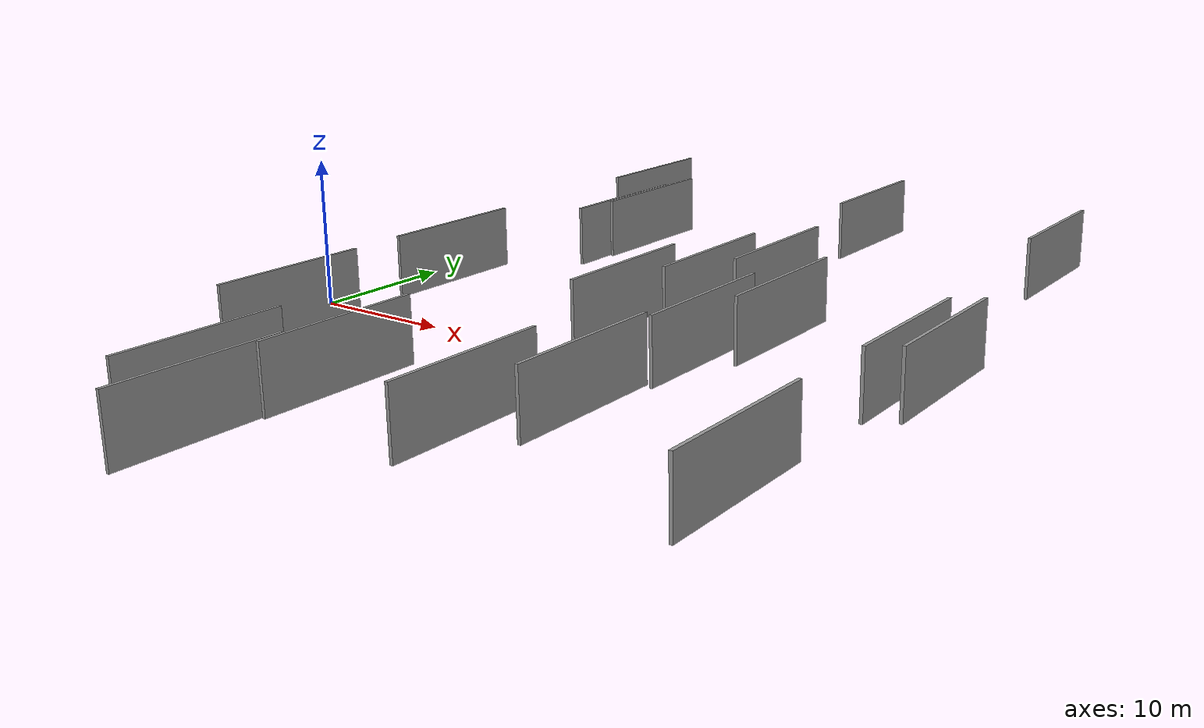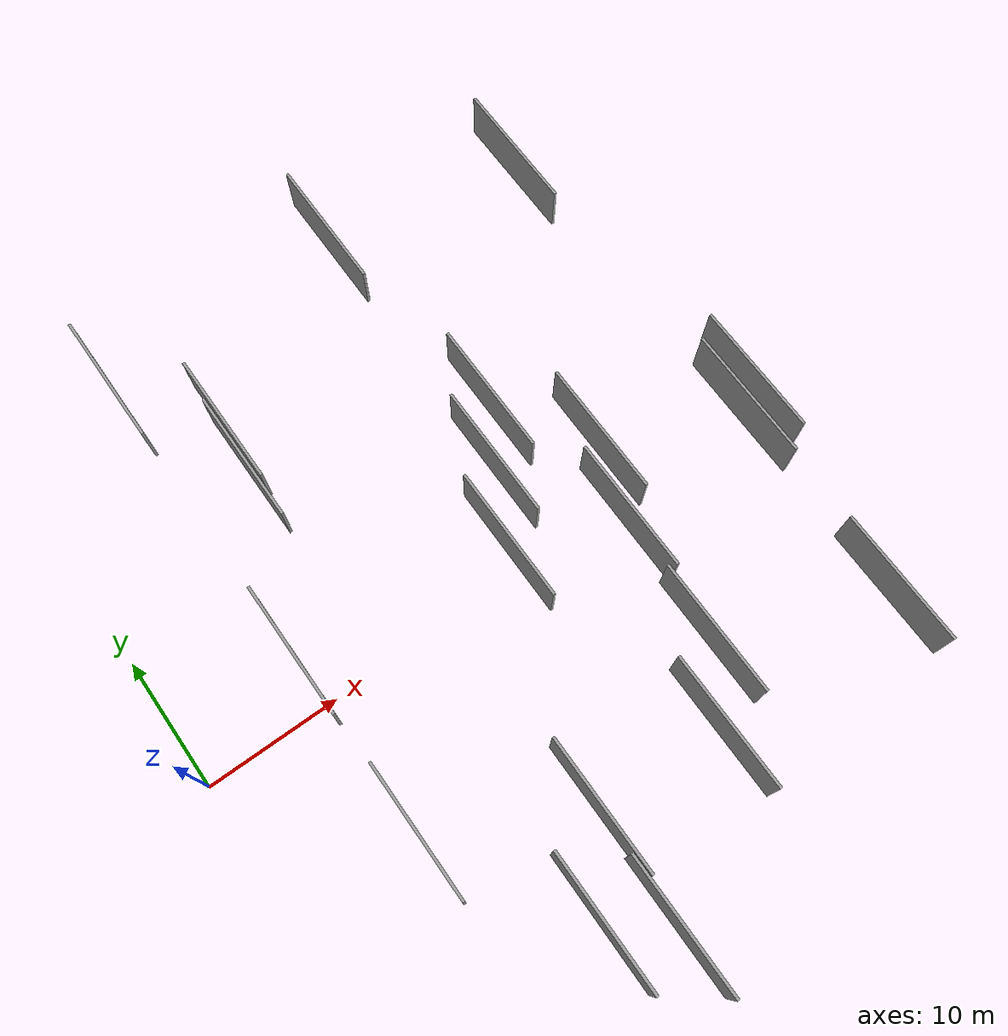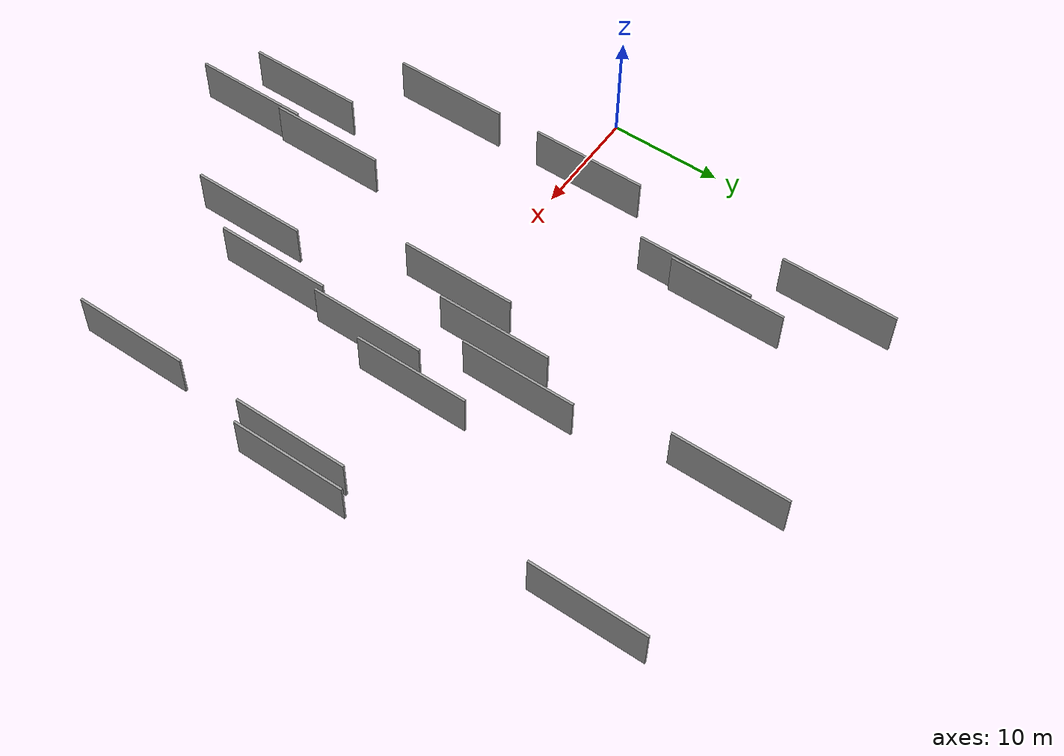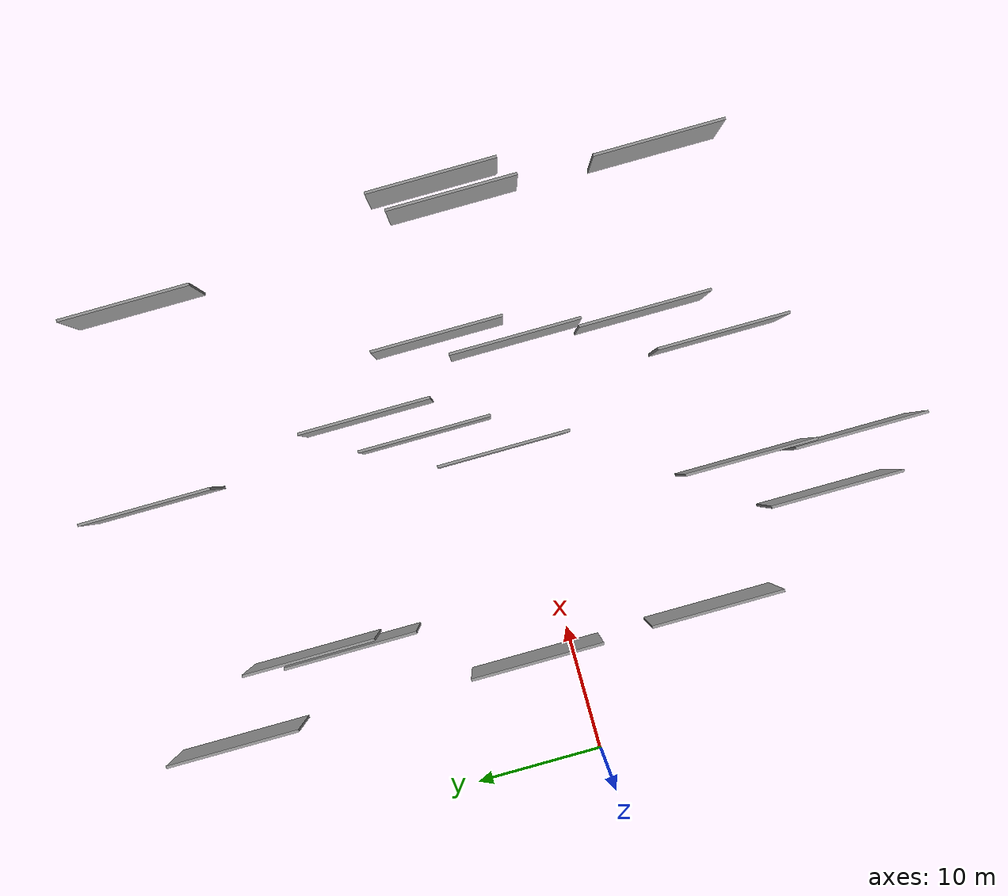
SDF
<sdf version="1.6">
 <world name="default">
  <scene>
   <sky><clouds><speed>12</speed></clouds></sky>
   <ambient>0.4 0.4 0.4 1</ambient>
   <background>0.7 0.7 0.7 1</background>
   <shadows>1</shadows>
  </scene>
  <gravity>0 0 -9.8066</gravity>
  <magnetic_field>6e-06 2.3e-05 -4.2e-05</magnetic_field>
  <physics default="0" name="default_physics" type="ode">
   <ode>
    <solver>
     <type>quick</type>
     <iters>10</iters>
     <sor>1.0</sor>
     <use_dynamic_moi_rescaling>0</use_dynamic_moi_rescaling>
    </solver>
    <constraints>
     <cfm>0</cfm>
     <erp>0.2</erp>
     <contact_max_correcting_vel>100</contact_max_correcting_vel>
     <contact_surface_layer>0.001</contact_surface_layer>
    </constraints>
   </ode>
   <max_step_size>0.004</max_step_size>
   <real_time_factor>1</real_time_factor>
   <real_time_update_rate>250</real_time_update_rate>
  </physics>
  <light name="sun" type="directional">
   <pose>0 0 10 0 0 0</pose>
   <diffuse>0.8 0.8 0.8 1</diffuse>
   <specular>0.2 0.2 0.2 1</specular>
   <attenuation>
    <range>1000</range>
    <constant>0.9</constant>
    <linear>0.01</linear>
    <quadratic>0.001</quadratic>
   </attenuation>
   <direction>-0.5 0.1 -0.9</direction>
  </light>
  <model name="grey_wall_1">
   <static>1</static>
   <pose>13.6870 15.7862 2.5 0.000000 0.000000 1.570796</pose>
   <link name="link">
    <pose>0 0 2.00 0 0 0</pose>
    <collision name="collision"><geometry><box><size>10.00 0.2 4.00</size></box></geometry></collision>
    <visual name="visual">
     <cast_shadows>0</cast_shadows>
     <geometry><box><size>10.00 0.2 4.00</size></box></geometry>
     <material>
      <script>
       <uri>model://grey_wall/materials/scripts</uri>
       <uri>model://grey_wall/materials/textures</uri>
       <name>vrc/grey_wall</name>
      </script>
     </material>
    </visual>
   </link>
  </model>
  <model name="grey_wall_2">
   <static>1</static>
   <pose>28.8380 -16.5964 2.5 0.000000 0.000000 1.570796</pose>
   <link name="link">
    <pose>0 0 2.00 0 0 0</pose>
    <collision name="collision"><geometry><box><size>10.00 0.2 4.00</size></box></geometry></collision>
    <visual name="visual">
     <cast_shadows>0</cast_shadows>
     <geometry><box><size>10.00 0.2 4.00</size></box></geometry>
     <material>
      <script>
       <uri>model://grey_wall/materials/scripts</uri>
       <uri>model://grey_wall/materials/textures</uri>
       <name>vrc/grey_wall</name>
      </script>
     </material>
    </visual>
   </link>
  </model>
  <model name="grey_wall_3">
   <static>1</static>
   <pose>19.1805 -24.3394 2.5 0.000000 0.000000 1.570796</pose>
   <link name="link">
    <pose>0 0 2.00 0 0 0</pose>
    <collision name="collision"><geometry><box><size>10.00 0.2 4.00</size></box></geometry></collision>
    <visual name="visual">
     <cast_shadows>0</cast_shadows>
     <geometry><box><size>10.00 0.2 4.00</size></box></geometry>
     <material>
      <script>
       <uri>model://grey_wall/materials/scripts</uri>
       <uri>model://grey_wall/materials/textures</uri>
       <name>vrc/grey_wall</name>
      </script>
     </material>
    </visual>
   </link>
  </model>
  <model name="grey_wall_4">
   <static>1</static>
   <pose>45.4617 0.9145 2.5 0.000000 0.000000 1.570796</pose>
   <link name="link">
    <pose>0 0 2.00 0 0 0</pose>
    <collision name="collision"><geometry><box><size>10.00 0.2 4.00</size></box></geometry></collision>
    <visual name="visual">
     <cast_shadows>0</cast_shadows>
     <geometry><box><size>10.00 0.2 4.00</size></box></geometry>
     <material>
      <script>
       <uri>model://grey_wall/materials/scripts</uri>
       <uri>model://grey_wall/materials/textures</uri>
       <name>vrc/grey_wall</name>
      </script>
     </material>
    </visual>
   </link>
  </model>
  <model name="grey_wall_5">
   <static>1</static>
   <pose>43.6676 -15.8494 2.5 0.000000 0.000000 1.570796</pose>
   <link name="link">
    <pose>0 0 2.00 0 0 0</pose>
    <collision name="collision"><geometry><box><size>10.00 0.2 4.00</size></box></geometry></collision>
    <visual name="visual">
     <cast_shadows>0</cast_shadows>
     <geometry><box><size>10.00 0.2 4.00</size></box></geometry>
     <material>
      <script>
       <uri>model://grey_wall/materials/scripts</uri>
       <uri>model://grey_wall/materials/textures</uri>
       <name>vrc/grey_wall</name>
      </script>
     </material>
    </visual>
   </link>
  </model>
  <model name="grey_wall_6">
   <static>1</static>
   <pose>32.5299 -1.8773 2.5 0.000000 0.000000 1.570796</pose>
   <link name="link">
    <pose>0 0 2.00 0 0 0</pose>
    <collision name="collision"><geometry><box><size>10.00 0.2 4.00</size></box></geometry></collision>
    <visual name="visual">
     <cast_shadows>0</cast_shadows>
     <geometry><box><size>10.00 0.2 4.00</size></box></geometry>
     <material>
      <script>
       <uri>model://grey_wall/materials/scripts</uri>
       <uri>model://grey_wall/materials/textures</uri>
       <name>vrc/grey_wall</name>
      </script>
     </material>
    </visual>
   </link>
  </model>
  <model name="grey_wall_7">
   <static>1</static>
   <pose>14.0009 18.8627 2.5 0.000000 0.000000 1.570796</pose>
   <link name="link">
    <pose>0 0 2.00 0 0 0</pose>
    <collision name="collision"><geometry><box><size>10.00 0.2 4.00</size></box></geometry></collision>
    <visual name="visual">
     <cast_shadows>0</cast_shadows>
     <geometry><box><size>10.00 0.2 4.00</size></box></geometry>
     <material>
      <script>
       <uri>model://grey_wall/materials/scripts</uri>
       <uri>model://grey_wall/materials/textures</uri>
       <name>vrc/grey_wall</name>
      </script>
     </material>
    </visual>
   </link>
  </model>
  <model name="grey_wall_8">
   <static>1</static>
   <pose>15.5263 -21.5005 2.5 0.000000 0.000000 1.570796</pose>
   <link name="link">
    <pose>0 0 2.00 0 0 0</pose>
    <collision name="collision"><geometry><box><size>10.00 0.2 4.00</size></box></geometry></collision>
    <visual name="visual">
     <cast_shadows>0</cast_shadows>
     <geometry><box><size>10.00 0.2 4.00</size></box></geometry>
     <material>
      <script>
       <uri>model://grey_wall/materials/scripts</uri>
       <uri>model://grey_wall/materials/textures</uri>
       <name>vrc/grey_wall</name>
      </script>
     </material>
    </visual>
   </link>
  </model>
  <model name="grey_wall_9">
   <static>1</static>
   <pose>19.4488 -16.0857 2.5 0.000000 0.000000 1.570796</pose>
   <link name="link">
    <pose>0 0 2.00 0 0 0</pose>
    <collision name="collision"><geometry><box><size>10.00 0.2 4.00</size></box></geometry></collision>
    <visual name="visual">
     <cast_shadows>0</cast_shadows>
     <geometry><box><size>10.00 0.2 4.00</size></box></geometry>
     <material>
      <script>
       <uri>model://grey_wall/materials/scripts</uri>
       <uri>model://grey_wall/materials/textures</uri>
       <name>vrc/grey_wall</name>
      </script>
     </material>
    </visual>
   </link>
  </model>
  <model name="grey_wall_10">
   <static>1</static>
   <pose>24.8683 1.1227 2.5 0.000000 0.000000 1.570796</pose>
   <link name="link">
    <pose>0 0 2.00 0 0 0</pose>
    <collision name="collision"><geometry><box><size>10.00 0.2 4.00</size></box></geometry></collision>
    <visual name="visual">
     <cast_shadows>0</cast_shadows>
     <geometry><box><size>10.00 0.2 4.00</size></box></geometry>
     <material>
      <script>
       <uri>model://grey_wall/materials/scripts</uri>
       <uri>model://grey_wall/materials/textures</uri>
       <name>vrc/grey_wall</name>
      </script>
     </material>
    </visual>
   </link>
  </model>
  <model name="grey_wall_11">
   <static>1</static>
   <pose>42.5177 24.9305 2.5 0.000000 0.000000 1.570796</pose>
   <link name="link">
    <pose>0 0 2.00 0 0 0</pose>
    <collision name="collision"><geometry><box><size>10.00 0.2 4.00</size></box></geometry></collision>
    <visual name="visual">
     <cast_shadows>0</cast_shadows>
     <geometry><box><size>10.00 0.2 4.00</size></box></geometry>
     <material>
      <script>
       <uri>model://grey_wall/materials/scripts</uri>
       <uri>model://grey_wall/materials/textures</uri>
       <name>vrc/grey_wall</name>
      </script>
     </material>
    </visual>
   </link>
  </model>
  <model name="grey_wall_12">
   <static>1</static>
   <pose>43.8625 -0.1990 2.5 0.000000 0.000000 1.570796</pose>
   <link name="link">
    <pose>0 0 2.00 0 0 0</pose>
    <collision name="collision"><geometry><box><size>10.00 0.2 4.00</size></box></geometry></collision>
    <visual name="visual">
     <cast_shadows>0</cast_shadows>
     <geometry><box><size>10.00 0.2 4.00</size></box></geometry>
     <material>
      <script>
       <uri>model://grey_wall/materials/scripts</uri>
       <uri>model://grey_wall/materials/textures</uri>
       <name>vrc/grey_wall</name>
      </script>
     </material>
    </visual>
   </link>
  </model>
  <model name="grey_wall_13">
   <static>1</static>
   <pose>27.7871 27.4465 2.5 0.000000 0.000000 1.570796</pose>
   <link name="link">
    <pose>0 0 2.00 0 0 0</pose>
    <collision name="collision"><geometry><box><size>10.00 0.2 4.00</size></box></geometry></collision>
    <visual name="visual">
     <cast_shadows>0</cast_shadows>
     <geometry><box><size>10.00 0.2 4.00</size></box></geometry>
     <material>
      <script>
       <uri>model://grey_wall/materials/scripts</uri>
       <uri>model://grey_wall/materials/textures</uri>
       <name>vrc/grey_wall</name>
      </script>
     </material>
    </visual>
   </link>
  </model>
  <model name="grey_wall_14">
   <static>1</static>
   <pose>27.4650 6.3852 2.5 0.000000 0.000000 1.570796</pose>
   <link name="link">
    <pose>0 0 2.00 0 0 0</pose>
    <collision name="collision"><geometry><box><size>10.00 0.2 4.00</size></box></geometry></collision>
    <visual name="visual">
     <cast_shadows>0</cast_shadows>
     <geometry><box><size>10.00 0.2 4.00</size></box></geometry>
     <material>
      <script>
       <uri>model://grey_wall/materials/scripts</uri>
       <uri>model://grey_wall/materials/textures</uri>
       <name>vrc/grey_wall</name>
      </script>
     </material>
    </visual>
   </link>
  </model>
  <model name="grey_wall_15">
   <static>1</static>
   <pose>9.4506 -10.8042 2.5 0.000000 0.000000 1.570796</pose>
   <link name="link">
    <pose>0 0 2.00 0 0 0</pose>
    <collision name="collision"><geometry><box><size>10.00 0.2 4.00</size></box></geometry></collision>
    <visual name="visual">
     <cast_shadows>0</cast_shadows>
     <geometry><box><size>10.00 0.2 4.00</size></box></geometry>
     <material>
      <script>
       <uri>model://grey_wall/materials/scripts</uri>
       <uri>model://grey_wall/materials/textures</uri>
       <name>vrc/grey_wall</name>
      </script>
     </material>
    </visual>
   </link>
  </model>
  <model name="grey_wall_16">
   <static>1</static>
   <pose>34.2249 3.5902 2.5 0.000000 0.000000 1.570796</pose>
   <link name="link">
    <pose>0 0 2.00 0 0 0</pose>
    <collision name="collision"><geometry><box><size>10.00 0.2 4.00</size></box></geometry></collision>
    <visual name="visual">
     <cast_shadows>0</cast_shadows>
     <geometry><box><size>10.00 0.2 4.00</size></box></geometry>
     <material>
      <script>
       <uri>model://grey_wall/materials/scripts</uri>
       <uri>model://grey_wall/materials/textures</uri>
       <name>vrc/grey_wall</name>
      </script>
     </material>
    </visual>
   </link>
  </model>
  <model name="grey_wall_17">
   <static>1</static>
   <pose>9.2665 2.8877 2.5 0.000000 0.000000 1.570796</pose>
   <link name="link">
    <pose>0 0 2.00 0 0 0</pose>
    <collision name="collision"><geometry><box><size>10.00 0.2 4.00</size></box></geometry></collision>
    <visual name="visual">
     <cast_shadows>0</cast_shadows>
     <geometry><box><size>10.00 0.2 4.00</size></box></geometry>
     <material>
      <script>
       <uri>model://grey_wall/materials/scripts</uri>
       <uri>model://grey_wall/materials/textures</uri>
       <name>vrc/grey_wall</name>
      </script>
     </material>
    </visual>
   </link>
  </model>
  <model name="grey_wall_18">
   <static>1</static>
   <pose>29.8849 10.2765 2.5 0.000000 0.000000 1.570796</pose>
   <link name="link">
    <pose>0 0 2.00 0 0 0</pose>
    <collision name="collision"><geometry><box><size>10.00 0.2 4.00</size></box></geometry></collision>
    <visual name="visual">
     <cast_shadows>0</cast_shadows>
     <geometry><box><size>10.00 0.2 4.00</size></box></geometry>
     <material>
      <script>
       <uri>model://grey_wall/materials/scripts</uri>
       <uri>model://grey_wall/materials/textures</uri>
       <name>vrc/grey_wall</name>
      </script>
     </material>
    </visual>
   </link>
  </model>
  <model name="grey_wall_19">
   <static>1</static>
   <pose>31.9651 -11.5423 2.5 0.000000 0.000000 1.570796</pose>
   <link name="link">
    <pose>0 0 2.00 0 0 0</pose>
    <collision name="collision"><geometry><box><size>10.00 0.2 4.00</size></box></geometry></collision>
    <visual name="visual">
     <cast_shadows>0</cast_shadows>
     <geometry><box><size>10.00 0.2 4.00</size></box></geometry>
     <material>
      <script>
       <uri>model://grey_wall/materials/scripts</uri>
       <uri>model://grey_wall/materials/textures</uri>
       <name>vrc/grey_wall</name>
      </script>
     </material>
    </visual>
   </link>
  </model>
  <model name="grey_wall_20">
   <static>1</static>
   <pose>9.1116 25.9473 2.5 0.000000 0.000000 1.570796</pose>
   <link name="link">
    <pose>0 0 2.00 0 0 0</pose>
    <collision name="collision"><geometry><box><size>10.00 0.2 4.00</size></box></geometry></collision>
    <visual name="visual">
     <cast_shadows>0</cast_shadows>
     <geometry><box><size>10.00 0.2 4.00</size></box></geometry>
     <material>
      <script>
       <uri>model://grey_wall/materials/scripts</uri>
       <uri>model://grey_wall/materials/textures</uri>
       <name>vrc/grey_wall</name>
      </script>
     </material>
    </visual>
   </link>
  </model>
 </world>
</sdf>
